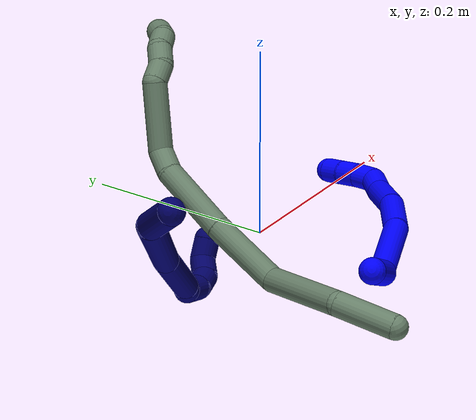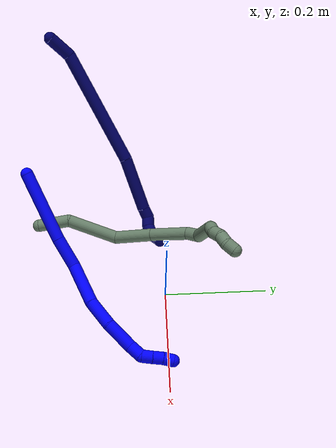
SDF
<sdf version="1.7">
 <world name="default">
  <model name="1">
   <static>0</static>
   <link name="1">
    <collision name="collision-cylinder-e_1_1_4">
     <pose>0.009241 0.002889 -0.070736 -3.10077 0.129797 -2.53294</pose>
     <geometry><cylinder><radius>0.0125</radius><length>0.142792</length></cylinder></geometry>
     <surface>
      <friction><ode><mu>1.16</mu><mu2>1.16</mu2><slip1>0</slip1><slip2>0</slip2></ode></friction>
      <contact><ode><kp>1e+06</kp><kd>1</kd><max_vel>0</max_vel><min_depth>0.001</min_depth></ode></contact>
     </surface>
    </collision>
    <visual name="visual-cylinder-e_1_1_4">
     <pose>0.009241 0.002889 -0.070736 -3.10077 0.129797 -2.53294</pose>
     <geometry><cylinder><radius>0.0125</radius><length>0.142792</length></cylinder></geometry>
     <material><ambient>0 0 1 1</ambient></material>
    </visual>
    <collision name="collision-cylinder-e_2_4_5">
     <pose>0.021598 0.009668 -0.172392 -3.01645 0.099661 -1.34458</pose>
     <geometry><cylinder><radius>0.0125</radius><length>0.062638</length></cylinder></geometry>
     <surface>
      <friction><ode><mu>1.16</mu><mu2>1.16</mu2><slip1>0</slip1><slip2>0</slip2></ode></friction>
      <contact><ode><kp>1e+06</kp><kd>1</kd><max_vel>0</max_vel><min_depth>0.001</min_depth></ode></contact>
     </surface>
    </collision>
    <visual name="visual-cylinder-e_2_4_5">
     <pose>0.021598 0.009668 -0.172392 -3.01645 0.099661 -1.34458</pose>
     <geometry><cylinder><radius>0.0125</radius><length>0.062638</length></cylinder></geometry>
     <material><ambient>0 0 1 1</ambient></material>
    </visual>
    <collision name="collision-cylinder-e_3_5_6">
     <pose>0.050846 0.022088 -0.237975 -2.90028 0.63191 -2.43128</pose>
     <geometry><cylinder><radius>0.0125</radius><length>0.088479</length></cylinder></geometry>
     <surface>
      <friction><ode><mu>1.16</mu><mu2>1.16</mu2><slip1>0</slip1><slip2>0</slip2></ode></friction>
      <contact><ode><kp>1e+06</kp><kd>1</kd><max_vel>0</max_vel><min_depth>0.001</min_depth></ode></contact>
     </surface>
    </collision>
    <visual name="visual-cylinder-e_3_5_6">
     <pose>0.050846 0.022088 -0.237975 -2.90028 0.63191 -2.43128</pose>
     <geometry><cylinder><radius>0.0125</radius><length>0.088479</length></cylinder></geometry>
     <material><ambient>0 0 1 1</ambient></material>
    </visual>
    <collision name="collision-cylinder-e_4_6_7">
     <pose>0.089277 0.041057 -0.295782 -2.7179 0.451105 -1.6355</pose>
     <geometry><cylinder><radius>0.0125</radius><length>0.056422</length></cylinder></geometry>
     <surface>
      <friction><ode><mu>1.16</mu><mu2>1.16</mu2><slip1>0</slip1><slip2>0</slip2></ode></friction>
      <contact><ode><kp>1e+06</kp><kd>1</kd><max_vel>0</max_vel><min_depth>0.001</min_depth></ode></contact>
     </surface>
    </collision>
    <visual name="visual-cylinder-e_4_6_7">
     <pose>0.089277 0.041057 -0.295782 -2.7179 0.451105 -1.6355</pose>
     <geometry><cylinder><radius>0.0125</radius><length>0.056422</length></cylinder></geometry>
     <material><ambient>0 0 1 1</ambient></material>
    </visual>
    <collision name="collision-cylinder-e_5_7_8">
     <pose>0.10803 0.063651 -0.345298 -2.70969 0.218711 -0.928079</pose>
     <geometry><cylinder><radius>0.0125</radius><length>0.059494</length></cylinder></geometry>
     <surface>
      <friction><ode><mu>1.16</mu><mu2>1.16</mu2><slip1>0</slip1><slip2>0</slip2></ode></friction>
      <contact><ode><kp>1e+06</kp><kd>1</kd><max_vel>0</max_vel><min_depth>0.001</min_depth></ode></contact>
     </surface>
    </collision>
    <visual name="visual-cylinder-e_5_7_8">
     <pose>0.10803 0.063651 -0.345298 -2.70969 0.218711 -0.928079</pose>
     <geometry><cylinder><radius>0.0125</radius><length>0.059494</length></cylinder></geometry>
     <material><ambient>0 0 1 1</ambient></material>
    </visual>
    <collision name="collision-cylinder-e_6_8_9">
     <pose>0.119732 0.082973 -0.382546 -2.55891 0.382988 -1.14782</pose>
     <geometry><cylinder><radius>0.0125</radius><length>0.028084</length></cylinder></geometry>
     <surface>
      <friction><ode><mu>1.16</mu><mu2>1.16</mu2><slip1>0</slip1><slip2>0</slip2></ode></friction>
      <contact><ode><kp>1e+06</kp><kd>1</kd><max_vel>0</max_vel><min_depth>0.001</min_depth></ode></contact>
     </surface>
    </collision>
    <visual name="visual-cylinder-e_6_8_9">
     <pose>0.119732 0.082973 -0.382546 -2.55891 0.382988 -1.14782</pose>
     <geometry><cylinder><radius>0.0125</radius><length>0.028084</length></cylinder></geometry>
     <material><ambient>0 0 1 1</ambient></material>
    </visual>
    <collision name="collision-cylinder-e_7_9_10">
     <pose>0.123751 0.09912 -0.399004 -2.12703 -0.115646 0.207556</pose>
     <geometry><cylinder><radius>0.0125</radius><length>0.021288</length></cylinder></geometry>
     <surface>
      <friction><ode><mu>1.16</mu><mu2>1.16</mu2><slip1>0</slip1><slip2>0</slip2></ode></friction>
      <contact><ode><kp>1e+06</kp><kd>1</kd><max_vel>0</max_vel><min_depth>0.001</min_depth></ode></contact>
     </surface>
    </collision>
    <visual name="visual-cylinder-e_7_9_10">
     <pose>0.123751 0.09912 -0.399004 -2.12703 -0.115646 0.207556</pose>
     <geometry><cylinder><radius>0.0125</radius><length>0.021288</length></cylinder></geometry>
     <material><ambient>0 0 1 1</ambient></material>
    </visual>
    <collision name="collision-cylinder-e_8_10_11">
     <pose>0.120486 0.116552 -0.40989 -2.13115 -0.201373 0.361332</pose>
     <geometry><cylinder><radius>0.0125</radius><length>0.02037</length></cylinder></geometry>
     <surface>
      <friction><ode><mu>1.16</mu><mu2>1.16</mu2><slip1>0</slip1><slip2>0</slip2></ode></friction>
      <contact><ode><kp>1e+06</kp><kd>1</kd><max_vel>0</max_vel><min_depth>0.001</min_depth></ode></contact>
     </surface>
    </collision>
    <visual name="visual-cylinder-e_8_10_11">
     <pose>0.120486 0.116552 -0.40989 -2.13115 -0.201373 0.361332</pose>
     <geometry><cylinder><radius>0.0125</radius><length>0.02037</length></cylinder></geometry>
     <material><ambient>0 0 1 1</ambient></material>
    </visual>
    <collision name="collision-cylinder-e_9_11_2">
     <pose>0.116881 0.132814 -0.421591 -2.25714 -0.154024 0.323091</pose>
     <geometry><cylinder><radius>0.0125</radius><length>0.020431</length></cylinder></geometry>
     <surface>
      <friction><ode><mu>1.16</mu><mu2>1.16</mu2><slip1>0</slip1><slip2>0</slip2></ode></friction>
      <contact><ode><kp>1e+06</kp><kd>1</kd><max_vel>0</max_vel><min_depth>0.001</min_depth></ode></contact>
     </surface>
    </collision>
    <visual name="visual-cylinder-e_9_11_2">
     <pose>0.116881 0.132814 -0.421591 -2.25714 -0.154024 0.323091</pose>
     <geometry><cylinder><radius>0.0125</radius><length>0.020431</length></cylinder></geometry>
     <material><ambient>0 0 1 1</ambient></material>
    </visual>
    <collision name="collision-sphere-2">
     <pose>0.115314 0.140623 -0.427988 0 -0 0</pose>
     <geometry><sphere><radius>0.0125</radius></sphere></geometry>
     <surface>
      <friction><ode><mu>1.16</mu><mu2>1.16</mu2><slip1>0</slip1><slip2>0</slip2></ode></friction>
      <contact><ode><kp>1e+06</kp><kd>1</kd><max_vel>0</max_vel><min_depth>0.001</min_depth></ode></contact>
     </surface>
    </collision>
    <visual name="visual-sphere-2">
     <pose>0.115314 0.140623 -0.427988 0 -0 0</pose>
     <geometry><sphere><radius>0.0125</radius></sphere></geometry>
     <material><ambient>0 0 1 1</ambient></material>
    </visual>
    <collision name="collision-sphere-11">
     <pose>0.118449 0.125005 -0.415194 0 -0 0</pose>
     <geometry><sphere><radius>0.0125</radius></sphere></geometry>
     <surface>
      <friction><ode><mu>1.16</mu><mu2>1.16</mu2><slip1>0</slip1><slip2>0</slip2></ode></friction>
      <contact><ode><kp>1e+06</kp><kd>1</kd><max_vel>0</max_vel><min_depth>0.001</min_depth></ode></contact>
     </surface>
    </collision>
    <visual name="visual-sphere-11">
     <pose>0.118449 0.125005 -0.415194 0 -0 0</pose>
     <geometry><sphere><radius>0.0125</radius></sphere></geometry>
     <material><ambient>0 0 1 1</ambient></material>
    </visual>
    <collision name="collision-sphere-10">
     <pose>0.122523 0.108099 -0.404586 0 -0 0</pose>
     <geometry><sphere><radius>0.0125</radius></sphere></geometry>
     <surface>
      <friction><ode><mu>1.16</mu><mu2>1.16</mu2><slip1>0</slip1><slip2>0</slip2></ode></friction>
      <contact><ode><kp>1e+06</kp><kd>1</kd><max_vel>0</max_vel><min_depth>0.001</min_depth></ode></contact>
     </surface>
    </collision>
    <visual name="visual-sphere-10">
     <pose>0.122523 0.108099 -0.404586 0 -0 0</pose>
     <geometry><sphere><radius>0.0125</radius></sphere></geometry>
     <material><ambient>0 0 1 1</ambient></material>
    </visual>
    <collision name="collision-sphere-9">
     <pose>0.124979 0.09014 -0.393421 0 -0 0</pose>
     <geometry><sphere><radius>0.0125</radius></sphere></geometry>
     <surface>
      <friction><ode><mu>1.16</mu><mu2>1.16</mu2><slip1>0</slip1><slip2>0</slip2></ode></friction>
      <contact><ode><kp>1e+06</kp><kd>1</kd><max_vel>0</max_vel><min_depth>0.001</min_depth></ode></contact>
     </surface>
    </collision>
    <visual name="visual-sphere-9">
     <pose>0.124979 0.09014 -0.393421 0 -0 0</pose>
     <geometry><sphere><radius>0.0125</radius></sphere></geometry>
     <material><ambient>0 0 1 1</ambient></material>
    </visual>
    <collision name="collision-sphere-4">
     <pose>0.018482 0.005778 -0.141473 0 -0 0</pose>
     <geometry><sphere><radius>0.0125</radius></sphere></geometry>
     <surface>
      <friction><ode><mu>1.16</mu><mu2>1.16</mu2><slip1>0</slip1><slip2>0</slip2></ode></friction>
      <contact><ode><kp>1e+06</kp><kd>1</kd><max_vel>0</max_vel><min_depth>0.001</min_depth></ode></contact>
     </surface>
    </collision>
    <visual name="visual-sphere-4">
     <pose>0.018482 0.005778 -0.141473 0 -0 0</pose>
     <geometry><sphere><radius>0.0125</radius></sphere></geometry>
     <material><ambient>0 0 1 1</ambient></material>
    </visual>
    <collision name="collision-sphere-1">
     <geometry><sphere><radius>0.0125</radius></sphere></geometry>
     <surface>
      <friction><ode><mu>1.16</mu><mu2>1.16</mu2><slip1>0</slip1><slip2>0</slip2></ode></friction>
      <contact><ode><kp>1e+06</kp><kd>1</kd><max_vel>0</max_vel><min_depth>0.001</min_depth></ode></contact>
     </surface>
    </collision>
    <visual name="visual-sphere-1">
     <geometry><sphere><radius>0.0125</radius></sphere></geometry>
     <material><ambient>0 0 1 1</ambient></material>
    </visual>
    <collision name="collision-sphere-8">
     <pose>0.114484 0.075806 -0.37167 0 -0 0</pose>
     <geometry><sphere><radius>0.0125</radius></sphere></geometry>
     <surface>
      <friction><ode><mu>1.16</mu><mu2>1.16</mu2><slip1>0</slip1><slip2>0</slip2></ode></friction>
      <contact><ode><kp>1e+06</kp><kd>1</kd><max_vel>0</max_vel><min_depth>0.001</min_depth></ode></contact>
     </surface>
    </collision>
    <visual name="visual-sphere-8">
     <pose>0.114484 0.075806 -0.37167 0 -0 0</pose>
     <geometry><sphere><radius>0.0125</radius></sphere></geometry>
     <material><ambient>0 0 1 1</ambient></material>
    </visual>
    <collision name="collision-sphere-5">
     <pose>0.024714 0.013557 -0.203312 0 -0 0</pose>
     <geometry><sphere><radius>0.0125</radius></sphere></geometry>
     <surface>
      <friction><ode><mu>1.16</mu><mu2>1.16</mu2><slip1>0</slip1><slip2>0</slip2></ode></friction>
      <contact><ode><kp>1e+06</kp><kd>1</kd><max_vel>0</max_vel><min_depth>0.001</min_depth></ode></contact>
     </surface>
    </collision>
    <visual name="visual-sphere-5">
     <pose>0.024714 0.013557 -0.203312 0 -0 0</pose>
     <geometry><sphere><radius>0.0125</radius></sphere></geometry>
     <material><ambient>0 0 1 1</ambient></material>
    </visual>
    <collision name="collision-sphere-6">
     <pose>0.076978 0.030619 -0.272638 0 -0 0</pose>
     <geometry><sphere><radius>0.0125</radius></sphere></geometry>
     <surface>
      <friction><ode><mu>1.16</mu><mu2>1.16</mu2><slip1>0</slip1><slip2>0</slip2></ode></friction>
      <contact><ode><kp>1e+06</kp><kd>1</kd><max_vel>0</max_vel><min_depth>0.001</min_depth></ode></contact>
     </surface>
    </collision>
    <visual name="visual-sphere-6">
     <pose>0.076978 0.030619 -0.272638 0 -0 0</pose>
     <geometry><sphere><radius>0.0125</radius></sphere></geometry>
     <material><ambient>0 0 1 1</ambient></material>
    </visual>
    <collision name="collision-sphere-7">
     <pose>0.101576 0.051495 -0.318926 0 -0 0</pose>
     <geometry><sphere><radius>0.0125</radius></sphere></geometry>
     <surface>
      <friction><ode><mu>1.16</mu><mu2>1.16</mu2><slip1>0</slip1><slip2>0</slip2></ode></friction>
      <contact><ode><kp>1e+06</kp><kd>1</kd><max_vel>0</max_vel><min_depth>0.001</min_depth></ode></contact>
     </surface>
    </collision>
    <visual name="visual-sphere-7">
     <pose>0.101576 0.051495 -0.318926 0 -0 0</pose>
     <geometry><sphere><radius>0.0125</radius></sphere></geometry>
     <material><ambient>0 0 1 1</ambient></material>
    </visual>
    <inertial>
     <pose>0.05895 0.037208 -0.230775 0 -0 0</pose>
     <mass>0.5</mass>
     <inertia>
      <ixx>-0.000436</ixx>
      <ixy>0</ixy>
      <ixz>0</ixz>
      <iyy>2.6e-05</iyy>
      <iyz>0</iyz>
      <izz>-0.000161</izz>
     </inertia>
    </inertial>
   </link>
   <pose>-0.215657 -0.265855 0.127899 0.561567 -0.805591 -0.225946</pose>
  </model>
  <model name="7">
   <static>0</static>
   <link name="7">
    <collision name="collision-cylinder-e_1_1_4">
     <pose>-0.000954 0.014287 -0.020716 -2.53783 -0.037892 0.121547</pose>
     <geometry><cylinder><radius>0.0125</radius><length>0.050365</length></cylinder></geometry>
     <surface>
      <friction><ode><mu>1.16</mu><mu2>1.16</mu2><slip1>0</slip1><slip2>0</slip2></ode></friction>
      <contact><ode><kp>1e+06</kp><kd>1</kd><max_vel>0</max_vel><min_depth>0.001</min_depth></ode></contact>
     </surface>
    </collision>
    <visual name="visual-cylinder-e_1_1_4">
     <pose>-0.000954 0.014287 -0.020716 -2.53783 -0.037892 0.121547</pose>
     <geometry><cylinder><radius>0.0125</radius><length>0.050365</length></cylinder></geometry>
     <material><ambient>0.003922 0 0.403922 1</ambient></material>
    </visual>
    <collision name="collision-cylinder-e_2_4_5">
     <pose>-0.009048 0.050434 -0.156898 -2.95449 -0.060684 0.625707</pose>
     <geometry><cylinder><radius>0.0125</radius><length>0.235469</length></cylinder></geometry>
     <surface>
      <friction><ode><mu>1.16</mu><mu2>1.16</mu2><slip1>0</slip1><slip2>0</slip2></ode></friction>
      <contact><ode><kp>1e+06</kp><kd>1</kd><max_vel>0</max_vel><min_depth>0.001</min_depth></ode></contact>
     </surface>
    </collision>
    <visual name="visual-cylinder-e_2_4_5">
     <pose>-0.009048 0.050434 -0.156898 -2.95449 -0.060684 0.625707</pose>
     <geometry><cylinder><radius>0.0125</radius><length>0.235469</length></cylinder></geometry>
     <material><ambient>0.003922 0 0.403922 1</ambient></material>
    </visual>
    <collision name="collision-cylinder-e_3_5_6">
     <pose>-0.027205 0.077745 -0.325205 -3.03882 -0.204496 2.21226</pose>
     <geometry><cylinder><radius>0.0125</radius><length>0.108503</length></cylinder></geometry>
     <surface>
      <friction><ode><mu>1.16</mu><mu2>1.16</mu2><slip1>0</slip1><slip2>0</slip2></ode></friction>
      <contact><ode><kp>1e+06</kp><kd>1</kd><max_vel>0</max_vel><min_depth>0.001</min_depth></ode></contact>
     </surface>
    </collision>
    <visual name="visual-cylinder-e_3_5_6">
     <pose>-0.027205 0.077745 -0.325205 -3.03882 -0.204496 2.21226</pose>
     <geometry><cylinder><radius>0.0125</radius><length>0.108503</length></cylinder></geometry>
     <material><ambient>0.003922 0 0.403922 1</ambient></material>
    </visual>
    <collision name="collision-cylinder-e_4_6_7">
     <pose>-0.039865 0.08525 -0.388574 -2.94884 -0.151986 1.33424</pose>
     <geometry><cylinder><radius>0.0125</radius><length>0.021704</length></cylinder></geometry>
     <surface>
      <friction><ode><mu>1.16</mu><mu2>1.16</mu2><slip1>0</slip1><slip2>0</slip2></ode></friction>
      <contact><ode><kp>1e+06</kp><kd>1</kd><max_vel>0</max_vel><min_depth>0.001</min_depth></ode></contact>
     </surface>
    </collision>
    <visual name="visual-cylinder-e_4_6_7">
     <pose>-0.039865 0.08525 -0.388574 -2.94884 -0.151986 1.33424</pose>
     <geometry><cylinder><radius>0.0125</radius><length>0.021704</length></cylinder></geometry>
     <material><ambient>0.003922 0 0.403922 1</ambient></material>
    </visual>
    <collision name="collision-cylinder-e_5_7_8">
     <pose>-0.041121 0.083208 -0.408616 2.73503 0.037369 0.180819</pose>
     <geometry><cylinder><radius>0.0125</radius><length>0.020731</length></cylinder></geometry>
     <surface>
      <friction><ode><mu>1.16</mu><mu2>1.16</mu2><slip1>0</slip1><slip2>0</slip2></ode></friction>
      <contact><ode><kp>1e+06</kp><kd>1</kd><max_vel>0</max_vel><min_depth>0.001</min_depth></ode></contact>
     </surface>
    </collision>
    <visual name="visual-cylinder-e_5_7_8">
     <pose>-0.041121 0.083208 -0.408616 2.73503 0.037369 0.180819</pose>
     <geometry><cylinder><radius>0.0125</radius><length>0.020731</length></cylinder></geometry>
     <material><ambient>0.003922 0 0.403922 1</ambient></material>
    </visual>
    <collision name="collision-cylinder-e_6_8_9">
     <pose>-0.036313 0.076289 -0.4271 2.83665 0.439518 1.93643</pose>
     <geometry><cylinder><radius>0.0125</radius><length>0.020782</length></cylinder></geometry>
     <surface>
      <friction><ode><mu>1.16</mu><mu2>1.16</mu2><slip1>0</slip1><slip2>0</slip2></ode></friction>
      <contact><ode><kp>1e+06</kp><kd>1</kd><max_vel>0</max_vel><min_depth>0.001</min_depth></ode></contact>
     </surface>
    </collision>
    <visual name="visual-cylinder-e_6_8_9">
     <pose>-0.036313 0.076289 -0.4271 2.83665 0.439518 1.93643</pose>
     <geometry><cylinder><radius>0.0125</radius><length>0.020782</length></cylinder></geometry>
     <material><ambient>0.003922 0 0.403922 1</ambient></material>
    </visual>
    <collision name="collision-cylinder-e_7_9_10">
     <pose>-0.023267 0.073317 -0.442527 3.11857 0.927969 3.0956</pose>
     <geometry><cylinder><radius>0.0125</radius><length>0.02155</length></cylinder></geometry>
     <surface>
      <friction><ode><mu>1.16</mu><mu2>1.16</mu2><slip1>0</slip1><slip2>0</slip2></ode></friction>
      <contact><ode><kp>1e+06</kp><kd>1</kd><max_vel>0</max_vel><min_depth>0.001</min_depth></ode></contact>
     </surface>
    </collision>
    <visual name="visual-cylinder-e_7_9_10">
     <pose>-0.023267 0.073317 -0.442527 3.11857 0.927969 3.0956</pose>
     <geometry><cylinder><radius>0.0125</radius><length>0.02155</length></cylinder></geometry>
     <material><ambient>0.003922 0 0.403922 1</ambient></material>
    </visual>
    <collision name="collision-cylinder-e_8_10_2">
     <pose>-0.005629 0.068015 -0.450154 1.79382 1.04049 1.24457</pose>
     <geometry><cylinder><radius>0.0125</radius><length>0.020895</length></cylinder></geometry>
     <surface>
      <friction><ode><mu>1.16</mu><mu2>1.16</mu2><slip1>0</slip1><slip2>0</slip2></ode></friction>
      <contact><ode><kp>1e+06</kp><kd>1</kd><max_vel>0</max_vel><min_depth>0.001</min_depth></ode></contact>
     </surface>
    </collision>
    <visual name="visual-cylinder-e_8_10_2">
     <pose>-0.005629 0.068015 -0.450154 1.79382 1.04049 1.24457</pose>
     <geometry><cylinder><radius>0.0125</radius><length>0.020895</length></cylinder></geometry>
     <material><ambient>0.003922 0 0.403922 1</ambient></material>
    </visual>
    <collision name="collision-sphere-2">
     <pose>0.003383 0.062861 -0.451322 0 -0 0</pose>
     <geometry><sphere><radius>0.0125</radius></sphere></geometry>
     <surface>
      <friction><ode><mu>1.16</mu><mu2>1.16</mu2><slip1>0</slip1><slip2>0</slip2></ode></friction>
      <contact><ode><kp>1e+06</kp><kd>1</kd><max_vel>0</max_vel><min_depth>0.001</min_depth></ode></contact>
     </surface>
    </collision>
    <visual name="visual-sphere-2">
     <pose>0.003383 0.062861 -0.451322 0 -0 0</pose>
     <geometry><sphere><radius>0.0125</radius></sphere></geometry>
     <material><ambient>0.003922 0 0.403922 1</ambient></material>
    </visual>
    <collision name="collision-sphere-10">
     <pose>-0.014642 0.073168 -0.448985 0 -0 0</pose>
     <geometry><sphere><radius>0.0125</radius></sphere></geometry>
     <surface>
      <friction><ode><mu>1.16</mu><mu2>1.16</mu2><slip1>0</slip1><slip2>0</slip2></ode></friction>
      <contact><ode><kp>1e+06</kp><kd>1</kd><max_vel>0</max_vel><min_depth>0.001</min_depth></ode></contact>
     </surface>
    </collision>
    <visual name="visual-sphere-10">
     <pose>-0.014642 0.073168 -0.448985 0 -0 0</pose>
     <geometry><sphere><radius>0.0125</radius></sphere></geometry>
     <material><ambient>0.003922 0 0.403922 1</ambient></material>
    </visual>
    <collision name="collision-sphere-9">
     <pose>-0.031891 0.073466 -0.43607 0 -0 0</pose>
     <geometry><sphere><radius>0.0125</radius></sphere></geometry>
     <surface>
      <friction><ode><mu>1.16</mu><mu2>1.16</mu2><slip1>0</slip1><slip2>0</slip2></ode></friction>
      <contact><ode><kp>1e+06</kp><kd>1</kd><max_vel>0</max_vel><min_depth>0.001</min_depth></ode></contact>
     </surface>
    </collision>
    <visual name="visual-sphere-9">
     <pose>-0.031891 0.073466 -0.43607 0 -0 0</pose>
     <geometry><sphere><radius>0.0125</radius></sphere></geometry>
     <material><ambient>0.003922 0 0.403922 1</ambient></material>
    </visual>
    <collision name="collision-sphere-4">
     <pose>-0.001908 0.028574 -0.041431 0 -0 0</pose>
     <geometry><sphere><radius>0.0125</radius></sphere></geometry>
     <surface>
      <friction><ode><mu>1.16</mu><mu2>1.16</mu2><slip1>0</slip1><slip2>0</slip2></ode></friction>
      <contact><ode><kp>1e+06</kp><kd>1</kd><max_vel>0</max_vel><min_depth>0.001</min_depth></ode></contact>
     </surface>
    </collision>
    <visual name="visual-sphere-4">
     <pose>-0.001908 0.028574 -0.041431 0 -0 0</pose>
     <geometry><sphere><radius>0.0125</radius></sphere></geometry>
     <material><ambient>0.003922 0 0.403922 1</ambient></material>
    </visual>
    <collision name="collision-sphere-1">
     <geometry><sphere><radius>0.0125</radius></sphere></geometry>
     <surface>
      <friction><ode><mu>1.16</mu><mu2>1.16</mu2><slip1>0</slip1><slip2>0</slip2></ode></friction>
      <contact><ode><kp>1e+06</kp><kd>1</kd><max_vel>0</max_vel><min_depth>0.001</min_depth></ode></contact>
     </surface>
    </collision>
    <visual name="visual-sphere-1">
     <geometry><sphere><radius>0.0125</radius></sphere></geometry>
     <material><ambient>0.003922 0 0.403922 1</ambient></material>
    </visual>
    <collision name="collision-sphere-8">
     <pose>-0.040734 0.079112 -0.418131 0 -0 0</pose>
     <geometry><sphere><radius>0.0125</radius></sphere></geometry>
     <surface>
      <friction><ode><mu>1.16</mu><mu2>1.16</mu2><slip1>0</slip1><slip2>0</slip2></ode></friction>
      <contact><ode><kp>1e+06</kp><kd>1</kd><max_vel>0</max_vel><min_depth>0.001</min_depth></ode></contact>
     </surface>
    </collision>
    <visual name="visual-sphere-8">
     <pose>-0.040734 0.079112 -0.418131 0 -0 0</pose>
     <geometry><sphere><radius>0.0125</radius></sphere></geometry>
     <material><ambient>0.003922 0 0.403922 1</ambient></material>
    </visual>
    <collision name="collision-sphere-5">
     <pose>-0.016188 0.072295 -0.272364 0 -0 0</pose>
     <geometry><sphere><radius>0.0125</radius></sphere></geometry>
     <surface>
      <friction><ode><mu>1.16</mu><mu2>1.16</mu2><slip1>0</slip1><slip2>0</slip2></ode></friction>
      <contact><ode><kp>1e+06</kp><kd>1</kd><max_vel>0</max_vel><min_depth>0.001</min_depth></ode></contact>
     </surface>
    </collision>
    <visual name="visual-sphere-5">
     <pose>-0.016188 0.072295 -0.272364 0 -0 0</pose>
     <geometry><sphere><radius>0.0125</radius></sphere></geometry>
     <material><ambient>0.003922 0 0.403922 1</ambient></material>
    </visual>
    <collision name="collision-sphere-6">
     <pose>-0.038222 0.083195 -0.378045 0 -0 0</pose>
     <geometry><sphere><radius>0.0125</radius></sphere></geometry>
     <surface>
      <friction><ode><mu>1.16</mu><mu2>1.16</mu2><slip1>0</slip1><slip2>0</slip2></ode></friction>
      <contact><ode><kp>1e+06</kp><kd>1</kd><max_vel>0</max_vel><min_depth>0.001</min_depth></ode></contact>
     </surface>
    </collision>
    <visual name="visual-sphere-6">
     <pose>-0.038222 0.083195 -0.378045 0 -0 0</pose>
     <geometry><sphere><radius>0.0125</radius></sphere></geometry>
     <material><ambient>0.003922 0 0.403922 1</ambient></material>
    </visual>
    <collision name="collision-sphere-7">
     <pose>-0.041508 0.087305 -0.399102 0 -0 0</pose>
     <geometry><sphere><radius>0.0125</radius></sphere></geometry>
     <surface>
      <friction><ode><mu>1.16</mu><mu2>1.16</mu2><slip1>0</slip1><slip2>0</slip2></ode></friction>
      <contact><ode><kp>1e+06</kp><kd>1</kd><max_vel>0</max_vel><min_depth>0.001</min_depth></ode></contact>
     </surface>
    </collision>
    <visual name="visual-sphere-7">
     <pose>-0.041508 0.087305 -0.399102 0 -0 0</pose>
     <geometry><sphere><radius>0.0125</radius></sphere></geometry>
     <material><ambient>0.003922 0 0.403922 1</ambient></material>
    </visual>
    <inertial>
     <pose>-0.016444 0.058386 -0.235994 0 -0 0</pose>
     <mass>0.5</mass>
     <inertia>
      <ixx>0.00157</ixx>
      <ixy>0</ixy>
      <ixz>0</ixz>
      <iyy>-6.9e-05</iyy>
      <iyz>0</iyz>
      <izz>-0.000169</izz>
     </inertia>
    </inertial>
   </link>
   <pose>-0.442189 -0.208846 0.264594 -0.659456 -0.951579 1.14845</pose>
  </model>
  <model name="17">
   <static>0</static>
   <link name="17">
    <collision name="collision-cylinder-e_1_1_4">
     <pose>0.007756 0.027765 0.011741 -1.17074 0.251832 -0.167428</pose>
     <geometry><cylinder><radius>0.0125</radius><length>0.062255</length></cylinder></geometry>
     <surface>
      <friction><ode><mu>1.16</mu><mu2>1.16</mu2><slip1>0</slip1><slip2>0</slip2></ode></friction>
      <contact><ode><kp>1e+06</kp><kd>1</kd><max_vel>0</max_vel><min_depth>0.001</min_depth></ode></contact>
     </surface>
    </collision>
    <visual name="visual-cylinder-e_1_1_4">
     <pose>0.007756 0.027765 0.011741 -1.17074 0.251832 -0.167428</pose>
     <geometry><cylinder><radius>0.0125</radius><length>0.062255</length></cylinder></geometry>
     <material><ambient>0.415686 0.509804 0.423529 1</ambient></material>
    </visual>
    <collision name="collision-cylinder-e_2_4_5">
     <pose>0.044462 0.097538 0.022887 -1.58495 0.603364 -0.61144</pose>
     <geometry><cylinder><radius>0.0125</radius><length>0.10204</length></cylinder></geometry>
     <surface>
      <friction><ode><mu>1.16</mu><mu2>1.16</mu2><slip1>0</slip1><slip2>0</slip2></ode></friction>
      <contact><ode><kp>1e+06</kp><kd>1</kd><max_vel>0</max_vel><min_depth>0.001</min_depth></ode></contact>
     </surface>
    </collision>
    <visual name="visual-cylinder-e_2_4_5">
     <pose>0.044462 0.097538 0.022887 -1.58495 0.603364 -0.61144</pose>
     <geometry><cylinder><radius>0.0125</radius><length>0.10204</length></cylinder></geometry>
     <material><ambient>0.415686 0.509804 0.423529 1</ambient></material>
    </visual>
    <collision name="collision-cylinder-e_3_5_6">
     <pose>0.092371 0.166931 0.044102 -0.898266 0.496338 -0.243059</pose>
     <geometry><cylinder><radius>0.0125</radius><length>0.079626</length></cylinder></geometry>
     <surface>
      <friction><ode><mu>1.16</mu><mu2>1.16</mu2><slip1>0</slip1><slip2>0</slip2></ode></friction>
      <contact><ode><kp>1e+06</kp><kd>1</kd><max_vel>0</max_vel><min_depth>0.001</min_depth></ode></contact>
     </surface>
    </collision>
    <visual name="visual-cylinder-e_3_5_6">
     <pose>0.092371 0.166931 0.044102 -0.898266 0.496338 -0.243059</pose>
     <geometry><cylinder><radius>0.0125</radius><length>0.079626</length></cylinder></geometry>
     <material><ambient>0.415686 0.509804 0.423529 1</ambient></material>
    </visual>
    <collision name="collision-cylinder-e_4_6_7">
     <pose>0.132222 0.21948 0.088345 -0.842693 0.554795 -0.253861</pose>
     <geometry><cylinder><radius>0.0125</radius><length>0.079318</length></cylinder></geometry>
     <surface>
      <friction><ode><mu>1.16</mu><mu2>1.16</mu2><slip1>0</slip1><slip2>0</slip2></ode></friction>
      <contact><ode><kp>1e+06</kp><kd>1</kd><max_vel>0</max_vel><min_depth>0.001</min_depth></ode></contact>
     </surface>
    </collision>
    <visual name="visual-cylinder-e_4_6_7">
     <pose>0.132222 0.21948 0.088345 -0.842693 0.554795 -0.253861</pose>
     <geometry><cylinder><radius>0.0125</radius><length>0.079318</length></cylinder></geometry>
     <material><ambient>0.415686 0.509804 0.423529 1</ambient></material>
    </visual>
    <collision name="collision-cylinder-e_5_7_8">
     <pose>0.162906 0.250293 0.117885 -0.671731 0.82318 -0.302446</pose>
     <geometry><cylinder><radius>0.0125</radius><length>0.026709</length></cylinder></geometry>
     <surface>
      <friction><ode><mu>1.16</mu><mu2>1.16</mu2><slip1>0</slip1><slip2>0</slip2></ode></friction>
      <contact><ode><kp>1e+06</kp><kd>1</kd><max_vel>0</max_vel><min_depth>0.001</min_depth></ode></contact>
     </surface>
    </collision>
    <visual name="visual-cylinder-e_5_7_8">
     <pose>0.162906 0.250293 0.117885 -0.671731 0.82318 -0.302446</pose>
     <geometry><cylinder><radius>0.0125</radius><length>0.026709</length></cylinder></geometry>
     <material><ambient>0.415686 0.509804 0.423529 1</ambient></material>
    </visual>
    <collision name="collision-cylinder-e_6_8_9">
     <pose>0.187665 0.252945 0.156098 0.096095 0.446627 0.021839</pose>
     <geometry><cylinder><radius>0.0125</radius><length>0.069299</length></cylinder></geometry>
     <surface>
      <friction><ode><mu>1.16</mu><mu2>1.16</mu2><slip1>0</slip1><slip2>0</slip2></ode></friction>
      <contact><ode><kp>1e+06</kp><kd>1</kd><max_vel>0</max_vel><min_depth>0.001</min_depth></ode></contact>
     </surface>
    </collision>
    <visual name="visual-cylinder-e_6_8_9">
     <pose>0.187665 0.252945 0.156098 0.096095 0.446627 0.021839</pose>
     <geometry><cylinder><radius>0.0125</radius><length>0.069299</length></cylinder></geometry>
     <material><ambient>0.415686 0.509804 0.423529 1</ambient></material>
    </visual>
    <collision name="collision-cylinder-e_7_9_10">
     <pose>0.211698 0.247927 0.191367 0.451683 1.09899 0.27958</pose>
     <geometry><cylinder><radius>0.0125</radius><length>0.020358</length></cylinder></geometry>
     <surface>
      <friction><ode><mu>1.16</mu><mu2>1.16</mu2><slip1>0</slip1><slip2>0</slip2></ode></friction>
      <contact><ode><kp>1e+06</kp><kd>1</kd><max_vel>0</max_vel><min_depth>0.001</min_depth></ode></contact>
     </surface>
    </collision>
    <visual name="visual-cylinder-e_7_9_10">
     <pose>0.211698 0.247927 0.191367 0.451683 1.09899 0.27958</pose>
     <geometry><cylinder><radius>0.0125</radius><length>0.020358</length></cylinder></geometry>
     <material><ambient>0.415686 0.509804 0.423529 1</ambient></material>
    </visual>
    <collision name="collision-cylinder-e_8_10_11">
     <pose>0.229506 0.247931 0.200317 -0.399771 1.03445 -0.229489</pose>
     <geometry><cylinder><radius>0.0125</radius><length>0.02034</length></cylinder></geometry>
     <surface>
      <friction><ode><mu>1.16</mu><mu2>1.16</mu2><slip1>0</slip1><slip2>0</slip2></ode></friction>
      <contact><ode><kp>1e+06</kp><kd>1</kd><max_vel>0</max_vel><min_depth>0.001</min_depth></ode></contact>
     </surface>
    </collision>
    <visual name="visual-cylinder-e_8_10_11">
     <pose>0.229506 0.247931 0.200317 -0.399771 1.03445 -0.229489</pose>
     <geometry><cylinder><radius>0.0125</radius><length>0.02034</length></cylinder></geometry>
     <material><ambient>0.415686 0.509804 0.423529 1</ambient></material>
    </visual>
    <collision name="collision-cylinder-e_9_11_12">
     <pose>0.24814 0.251081 0.206299 -0.75639 1.40624 -0.649706</pose>
     <geometry><cylinder><radius>0.0125</radius><length>0.020054</length></cylinder></geometry>
     <surface>
      <friction><ode><mu>1.16</mu><mu2>1.16</mu2><slip1>0</slip1><slip2>0</slip2></ode></friction>
      <contact><ode><kp>1e+06</kp><kd>1</kd><max_vel>0</max_vel><min_depth>0.001</min_depth></ode></contact>
     </surface>
    </collision>
    <visual name="visual-cylinder-e_9_11_12">
     <pose>0.24814 0.251081 0.206299 -0.75639 1.40624 -0.649706</pose>
     <geometry><cylinder><radius>0.0125</radius><length>0.020054</length></cylinder></geometry>
     <material><ambient>0.415686 0.509804 0.423529 1</ambient></material>
    </visual>
    <collision name="collision-cylinder-e_10_12_2">
     <pose>0.266535 0.25743 0.206843 -1.6947 1.01659 -1.12554</pose>
     <geometry><cylinder><radius>0.0125</radius><length>0.02</length></cylinder></geometry>
     <surface>
      <friction><ode><mu>1.16</mu><mu2>1.16</mu2><slip1>0</slip1><slip2>0</slip2></ode></friction>
      <contact><ode><kp>1e+06</kp><kd>1</kd><max_vel>0</max_vel><min_depth>0.001</min_depth></ode></contact>
     </surface>
    </collision>
    <visual name="visual-cylinder-e_10_12_2">
     <pose>0.266535 0.25743 0.206843 -1.6947 1.01659 -1.12554</pose>
     <geometry><cylinder><radius>0.0125</radius><length>0.02</length></cylinder></geometry>
     <material><ambient>0.415686 0.509804 0.423529 1</ambient></material>
    </visual>
    <collision name="collision-sphere-2">
     <pose>0.275038 0.262653 0.206192 0 -0 0</pose>
     <geometry><sphere><radius>0.0125</radius></sphere></geometry>
     <surface>
      <friction><ode><mu>1.16</mu><mu2>1.16</mu2><slip1>0</slip1><slip2>0</slip2></ode></friction>
      <contact><ode><kp>1e+06</kp><kd>1</kd><max_vel>0</max_vel><min_depth>0.001</min_depth></ode></contact>
     </surface>
    </collision>
    <visual name="visual-sphere-2">
     <pose>0.275038 0.262653 0.206192 0 -0 0</pose>
     <geometry><sphere><radius>0.0125</radius></sphere></geometry>
     <material><ambient>0.415686 0.509804 0.423529 1</ambient></material>
    </visual>
    <collision name="collision-sphere-12">
     <pose>0.258031 0.252208 0.207493 0 -0 0</pose>
     <geometry><sphere><radius>0.0125</radius></sphere></geometry>
     <surface>
      <friction><ode><mu>1.16</mu><mu2>1.16</mu2><slip1>0</slip1><slip2>0</slip2></ode></friction>
      <contact><ode><kp>1e+06</kp><kd>1</kd><max_vel>0</max_vel><min_depth>0.001</min_depth></ode></contact>
     </surface>
    </collision>
    <visual name="visual-sphere-12">
     <pose>0.258031 0.252208 0.207493 0 -0 0</pose>
     <geometry><sphere><radius>0.0125</radius></sphere></geometry>
     <material><ambient>0.415686 0.509804 0.423529 1</ambient></material>
    </visual>
    <collision name="collision-sphere-11">
     <pose>0.238248 0.249953 0.205104 0 -0 0</pose>
     <geometry><sphere><radius>0.0125</radius></sphere></geometry>
     <surface>
      <friction><ode><mu>1.16</mu><mu2>1.16</mu2><slip1>0</slip1><slip2>0</slip2></ode></friction>
      <contact><ode><kp>1e+06</kp><kd>1</kd><max_vel>0</max_vel><min_depth>0.001</min_depth></ode></contact>
     </surface>
    </collision>
    <visual name="visual-sphere-11">
     <pose>0.238248 0.249953 0.205104 0 -0 0</pose>
     <geometry><sphere><radius>0.0125</radius></sphere></geometry>
     <material><ambient>0.415686 0.509804 0.423529 1</ambient></material>
    </visual>
    <collision name="collision-sphere-10">
     <pose>0.220764 0.245908 0.19553 0 -0 0</pose>
     <geometry><sphere><radius>0.0125</radius></sphere></geometry>
     <surface>
      <friction><ode><mu>1.16</mu><mu2>1.16</mu2><slip1>0</slip1><slip2>0</slip2></ode></friction>
      <contact><ode><kp>1e+06</kp><kd>1</kd><max_vel>0</max_vel><min_depth>0.001</min_depth></ode></contact>
     </surface>
    </collision>
    <visual name="visual-sphere-10">
     <pose>0.220764 0.245908 0.19553 0 -0 0</pose>
     <geometry><sphere><radius>0.0125</radius></sphere></geometry>
     <material><ambient>0.415686 0.509804 0.423529 1</ambient></material>
    </visual>
    <collision name="collision-sphere-9">
     <pose>0.202631 0.249947 0.187205 0 -0 0</pose>
     <geometry><sphere><radius>0.0125</radius></sphere></geometry>
     <surface>
      <friction><ode><mu>1.16</mu><mu2>1.16</mu2><slip1>0</slip1><slip2>0</slip2></ode></friction>
      <contact><ode><kp>1e+06</kp><kd>1</kd><max_vel>0</max_vel><min_depth>0.001</min_depth></ode></contact>
     </surface>
    </collision>
    <visual name="visual-sphere-9">
     <pose>0.202631 0.249947 0.187205 0 -0 0</pose>
     <geometry><sphere><radius>0.0125</radius></sphere></geometry>
     <material><ambient>0.415686 0.509804 0.423529 1</ambient></material>
    </visual>
    <collision name="collision-sphere-4">
     <pose>0.015513 0.055531 0.023482 0 -0 0</pose>
     <geometry><sphere><radius>0.0125</radius></sphere></geometry>
     <surface>
      <friction><ode><mu>1.16</mu><mu2>1.16</mu2><slip1>0</slip1><slip2>0</slip2></ode></friction>
      <contact><ode><kp>1e+06</kp><kd>1</kd><max_vel>0</max_vel><min_depth>0.001</min_depth></ode></contact>
     </surface>
    </collision>
    <visual name="visual-sphere-4">
     <pose>0.015513 0.055531 0.023482 0 -0 0</pose>
     <geometry><sphere><radius>0.0125</radius></sphere></geometry>
     <material><ambient>0.415686 0.509804 0.423529 1</ambient></material>
    </visual>
    <collision name="collision-sphere-1">
     <geometry><sphere><radius>0.0125</radius></sphere></geometry>
     <surface>
      <friction><ode><mu>1.16</mu><mu2>1.16</mu2><slip1>0</slip1><slip2>0</slip2></ode></friction>
      <contact><ode><kp>1e+06</kp><kd>1</kd><max_vel>0</max_vel><min_depth>0.001</min_depth></ode></contact>
     </surface>
    </collision>
    <visual name="visual-sphere-1">
     <geometry><sphere><radius>0.0125</radius></sphere></geometry>
     <material><ambient>0.415686 0.509804 0.423529 1</ambient></material>
    </visual>
    <collision name="collision-sphere-8">
     <pose>0.172698 0.255944 0.124992 0 -0 0</pose>
     <geometry><sphere><radius>0.0125</radius></sphere></geometry>
     <surface>
      <friction><ode><mu>1.16</mu><mu2>1.16</mu2><slip1>0</slip1><slip2>0</slip2></ode></friction>
      <contact><ode><kp>1e+06</kp><kd>1</kd><max_vel>0</max_vel><min_depth>0.001</min_depth></ode></contact>
     </surface>
    </collision>
    <visual name="visual-sphere-8">
     <pose>0.172698 0.255944 0.124992 0 -0 0</pose>
     <geometry><sphere><radius>0.0125</radius></sphere></geometry>
     <material><ambient>0.415686 0.509804 0.423529 1</ambient></material>
    </visual>
    <collision name="collision-sphere-5">
     <pose>0.073412 0.139545 0.022293 0 -0 0</pose>
     <geometry><sphere><radius>0.0125</radius></sphere></geometry>
     <surface>
      <friction><ode><mu>1.16</mu><mu2>1.16</mu2><slip1>0</slip1><slip2>0</slip2></ode></friction>
      <contact><ode><kp>1e+06</kp><kd>1</kd><max_vel>0</max_vel><min_depth>0.001</min_depth></ode></contact>
     </surface>
    </collision>
    <visual name="visual-sphere-5">
     <pose>0.073412 0.139545 0.022293 0 -0 0</pose>
     <geometry><sphere><radius>0.0125</radius></sphere></geometry>
     <material><ambient>0.415686 0.509804 0.423529 1</ambient></material>
    </visual>
    <collision name="collision-sphere-6">
     <pose>0.11133 0.194317 0.065912 0 -0 0</pose>
     <geometry><sphere><radius>0.0125</radius></sphere></geometry>
     <surface>
      <friction><ode><mu>1.16</mu><mu2>1.16</mu2><slip1>0</slip1><slip2>0</slip2></ode></friction>
      <contact><ode><kp>1e+06</kp><kd>1</kd><max_vel>0</max_vel><min_depth>0.001</min_depth></ode></contact>
     </surface>
    </collision>
    <visual name="visual-sphere-6">
     <pose>0.11133 0.194317 0.065912 0 -0 0</pose>
     <geometry><sphere><radius>0.0125</radius></sphere></geometry>
     <material><ambient>0.415686 0.509804 0.423529 1</ambient></material>
    </visual>
    <collision name="collision-sphere-7">
     <pose>0.153113 0.244643 0.110778 0 -0 0</pose>
     <geometry><sphere><radius>0.0125</radius></sphere></geometry>
     <surface>
      <friction><ode><mu>1.16</mu><mu2>1.16</mu2><slip1>0</slip1><slip2>0</slip2></ode></friction>
      <contact><ode><kp>1e+06</kp><kd>1</kd><max_vel>0</max_vel><min_depth>0.001</min_depth></ode></contact>
     </surface>
    </collision>
    <visual name="visual-sphere-7">
     <pose>0.153113 0.244643 0.110778 0 -0 0</pose>
     <geometry><sphere><radius>0.0125</radius></sphere></geometry>
     <material><ambient>0.415686 0.509804 0.423529 1</ambient></material>
    </visual>
    <inertial>
     <pose>0.119007 0.17374 0.087592 0 -0 0</pose>
     <mass>0.5</mass>
     <inertia>
      <ixx>0.000145</ixx>
      <ixy>0</ixy>
      <ixz>0</ixz>
      <iyy>9.4e-05</iyy>
      <iyz>0</iyz>
      <izz>-0.000263</izz>
     </inertia>
    </inertial>
   </link>
   <pose>-0.147907 -0.251182 0.035232 -0.294768 -0.136502 0.310799</pose>
  </model>
 </world>
</sdf>
